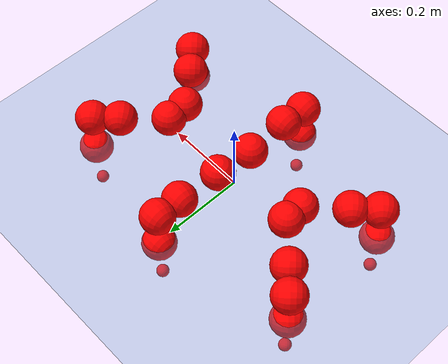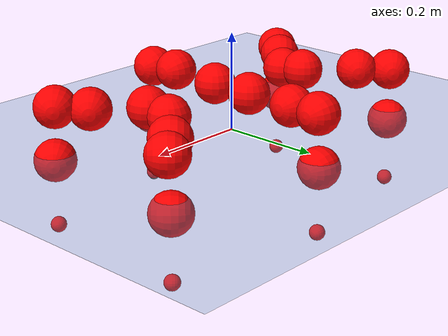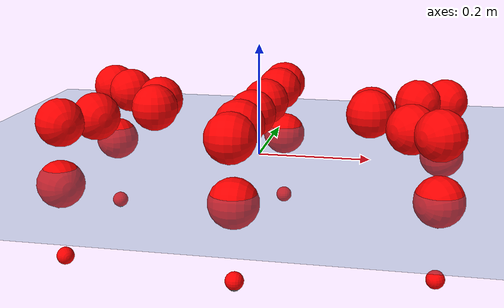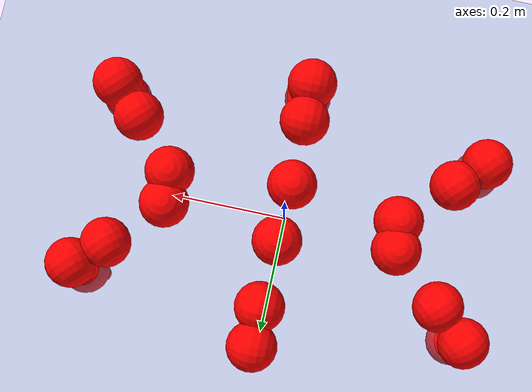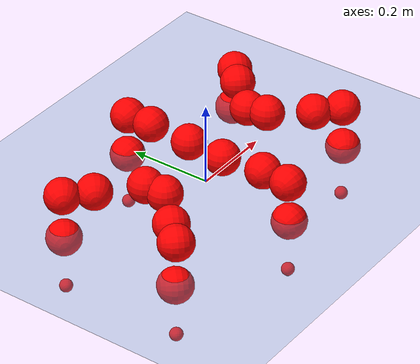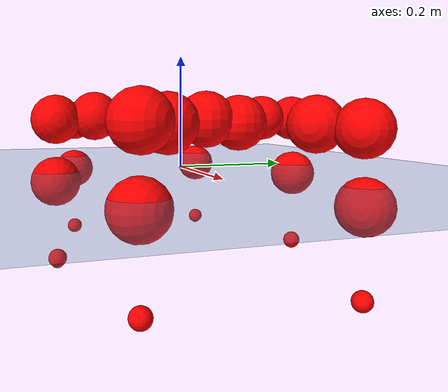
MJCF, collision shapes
<mujoco model="Golem">
  <compiler angle="radian" assetdir="assets" balanceinertia="true" inertiafromgeom="false"/>

  <option timestep="0.005" density="1.2" viscosity="2e-05"/>

  <size nkey="1"/>

  <visual>
    <quality shadowsize="8192"/>
    <map shadowclip="0.5"/>
  </visual>

  <default>
    <default class="/">
      <joint armature="0.01" damping="0.01" frictionloss="0.01"/>
      <geom contype="0" conaffinity="0" group="1" solref="-1000 -80"/>
      <site size="0.01 0.005 0.005" group="5"/>
      <general forcelimited="true" biastype="affine" gainprm="25" biasprm="0 -25 -0.5"/>
      <default class="visual">
        <geom type="mesh" group="2"/>
      </default>
      <default class="collision">
        <geom group="3"/>
      </default>
      <default class="foot">
        <geom size="0.01 0 0" condim="6" group="4" priority="1" solimp="0.015 1 0.01"/>
      </default>
      <default class="reward_collision_sphere">
        <geom group="5" rgba="1 0 0 1"/>
      </default>
    </default>
  </default>

  <asset>
    <texture type="skybox" colorspace="auto" name="//unnamed_texture_0" builtin="gradient" rgb1="0.95 0.95 0.95" rgb2="0.95 0.95 0.95" width="100" height="600"/>
    <texture type="2d" colorspace="auto" name="texplane" builtin="checker" rgb1="0.345 0.575 0.748" rgb2="0.345 0.575 0.748" markrgb="1 1 1" width="512" height="512"/>
    <material name="MatPlane" class="/" texture="texplane" texuniform="true" texrepeat="2 2" specular="0.9"/>
    <mesh name="body" class="/" file="body.stl" scale="0.001 0.001 0.001"/>
    <mesh name="coxa" class="/" file="coxa.stl" scale="0.001 0.001 0.001"/>
    <mesh name="femur" class="/" file="femur.stl" scale="0.001 0.001 0.001"/>
    <mesh name="tibia" class="/" file="tibia.stl" scale="0.001 0.001 0.001"/>
    <mesh name="tarsus" class="/" file="tarsus.stl" scale="0.001 0.001 0.001"/>
  </asset>

  <worldbody>
    <geom name="floor" class="/" size="100 100 0.125" type="plane" group="0" material="MatPlane"/>
    <light name="toplight_shadow" class="/" pos="0 0 5" dir="0.0990148 0.0990148 -0.990148" type="directional" ambient="0.04 0.04 0.04" diffuse="0.55 0.55 0.55" specular="0.12 0.12 0.12"/>
    <light name="toplight_fill" class="/" pos="0 0 5" dir="0.0990148 0.0990148 -0.990148" type="directional" castshadow="false" ambient="0.04 0.04 0.04" diffuse="0.3 0.3 0.3" specular="0.08 0.08 0.08"/>
    <body name="trunk" pos="0.00244267 -0.000354546 0.00448229" quat="1 -3.91092e-06 0.000107456 -0.000226866">
      <inertial pos="-4.77513e-05 -0.00266305 0.00252937" quat="0.999988 -0.00472333 -6.36094e-05 0.00151152" mass="4.14594" diaginertia="0.0282267 0.000977613 0.0315375"/>
      <joint name="//unnamed_joint_0" type="free"/>
      <geom name="//unnamed_geom_1" class="/" pos="0 0 0.0808696" quat="1 0 0 0" type="mesh" rgba="0.9 0.9 0.9 1" mesh="body"/>
      <site name="imu" class="/" pos="0.157944 0.0016043 0.110211" size="0.0104647"/>
      <camera name="track" class="/" pos="0 -1.26719 0" quat="0.707107 0.707107 0 0" mode="trackcom"/>
      <camera name="ego_camera" class="/" pos="0.161489 0 0.126359" quat="-0.5 -0.5 0.5 0.5"/>
      <body name="coxa_RR" pos="-0.216772 -0.0513286 0.0792131" quat="0.381504 -0.00238662 -0.00147625 -0.924363">
        <inertial pos="0.0055385 0.000791334 0.002129" quat="0.999857 0.00379503 0.01647 0.000398109" mass="0.229728" diaginertia="0.0298091 0.00103827 0.0341537"/>
        <joint name="coxa_joint_RR" class="/" pos="0 0 0" axis="0.00764918 0.00107608 -0.99997" stiffness="0.00243041" range="-3.14943 3.18833" armature="0.00957643" damping="0" frictionloss="0.00867437"/>
        <geom name="//unnamed_geom_2" class="/" type="mesh" rgba="0.2 0.2 0.2 1" mesh="coxa"/>
        <geom name="//unnamed_geom_3" class="reward_collision_sphere" size="0.0418588" pos="-0.0372668 0 0"/>
        <body name="femur_RR" pos="0.0749555 -0.00178398 -0.00226554" quat="0.499997 -0.499862 0.49996 0.500181">
          <inertial pos="-0.00209013 -0.00111398 -0.00437224" quat="0.999999 -1.77981e-05 0.000628504 0.00159118" mass="0.232506" diaginertia="0.0298496 0.00103526 0.0348551"/>
          <joint name="femur_joint_RR" class="/" pos="0 0 0" axis="-0.00975122 -0.0140202 -0.999854" range="-3.10024 3.14717" armature="0.0102887" damping="0.021993" frictionloss="0.00950854"/>
          <geom name="//unnamed_geom_4" class="/" type="mesh" rgba="0.9 0.9 0.9 1" mesh="femur"/>
          <geom name="//unnamed_geom_5" class="reward_collision_sphere" size="0.0418588"/>
          <body name="tibia_RR" pos="0.00245443 -0.066424 0.000878503" quat="1.30502e-05 1 -1.87926e-06 -6.75619e-09">
            <inertial pos="-0.000719781 -0.00358551 0.00444965" quat="0.99984 -0.00574922 -0.0162499 0.00470547" mass="0.22292" diaginertia="0.0306364 0.00102659 0.0330821"/>
            <joint name="tibia_joint_RR" class="/" pos="0 0 0" axis="-0.000947017 0.00860078 0.999963" stiffness="0.00118041" range="-3.13552 3.17442" armature="0.0101121" damping="0.010621" frictionloss="0.0116929"/>
            <geom name="//unnamed_geom_6" class="/" type="mesh" rgba="0.2 0.2 0.2 1" mesh="tibia"/>
            <geom name="//unnamed_geom_7" class="reward_collision_sphere" size="0.0418588"/>
            <body name="tarsus_RR" pos="0.109792 0.00401088 0.00309126" quat="0.999998 -0.000212687 0.0019732 0.000203954">
              <inertial pos="0.0763519 0.00534268 0.00122254" quat="0.489952 0.500706 0.504481 0.504718" mass="0.24048" diaginertia="0.0293667 0.000980229 0.03235"/>
              <joint name="tarsus_joint_RR" class="/" pos="0 0 0" axis="-0.000127347 0.000425253 1" range="-3.14945 3.09584" armature="0.0102493" damping="0.017219" frictionloss="0.00918598"/>
              <geom name="//unnamed_geom_8" class="/" type="mesh" rgba="0.9 0.9 0.9 1" mesh="tarsus"/>
              <geom name="foot_1" class="foot" size="0.00958549" pos="0.139129 0 0" quat="0 -0.707107 0 0.707107"/>
              <geom name="//unnamed_geom_10" class="reward_collision_sphere" size="0.0418588"/>
              <geom name="//unnamed_geom_11" class="reward_collision_sphere" size="0.0156971" pos="0.133539 0 0"/>
              <site name="foot_1" class="foot" pos="0.139129 0 0" quat="0 -0.707107 0 0.707107" size="0.0104647"/>
            </body>
          </body>
        </body>
      </body>
      <body name="coxa_RM" pos="-0.00538215 -0.0851714 0.0817373" quat="0.707336 0.000578912 -0.00119614 -0.706876">
        <inertial pos="-0.000312438 0.000703903 0.0062808" quat="0.999952 -0.00772939 0.00520052 -0.00291697" mass="0.235828" diaginertia="0.0311514 0.00109454 0.0335361"/>
        <joint name="coxa_joint_RM" class="/" pos="0 0 0" axis="0.00711115 -0.00351177 -0.999969" range="-3.14831 3.09119" armature="0.0102452" damping="0.0172342" frictionloss="0.0100216"/>
        <geom name="//unnamed_geom_12" class="/" type="mesh" rgba="0.2 0.2 0.2 1" mesh="coxa"/>
        <geom name="//unnamed_geom_13" class="reward_collision_sphere" size="0.0418588" pos="-0.0372668 0 0"/>
        <body name="femur_RM" pos="0.0717874 0.0016209 0.00709606" quat="0.497978 -0.499382 0.502012 0.500619">
          <inertial pos="-0.00232564 0.000773717 0.000880091" quat="0.999703 0.0191357 -0.00612012 0.0137764" mass="0.235958" diaginertia="0.0283103 0.00101709 0.0318108"/>
          <joint name="femur_joint_RM" class="/" pos="0 0 0" axis="0.00595691 0.00590622 -0.999965" range="-3.07909 3.07736" armature="0.00754941" damping="0" frictionloss="0.00979231"/>
          <geom name="//unnamed_geom_14" class="/" type="mesh" rgba="0.9 0.9 0.9 1" mesh="femur"/>
          <geom name="//unnamed_geom_15" class="reward_collision_sphere" size="0.0418588"/>
          <body name="tibia_RM" pos="0.00518737 -0.0665535 0.000198954" quat="0.000192409 1 -0.000165032 0.000169518">
            <inertial pos="-0.00157046 0.00163398 0.00408104" quat="0.999901 0.010496 0.00791132 0.00493159" mass="0.250236" diaginertia="0.0312394 0.00106449 0.0317654"/>
            <joint name="tibia_joint_RM" class="/" pos="0 0 0" axis="-0.00972984 0.0061888 0.999934" range="-3.084 3.20196" armature="0.0120369" damping="0.00452595" frictionloss="0.00962149"/>
            <geom name="//unnamed_geom_16" class="/" type="mesh" rgba="0.2 0.2 0.2 1" mesh="tibia"/>
            <geom name="//unnamed_geom_17" class="reward_collision_sphere" size="0.0418588"/>
            <body name="tarsus_RM" pos="0.105542 0.00295708 -0.00528456" quat="1 0.000365195 -0.000147375 -0.000317843">
              <inertial pos="0.0735256 0.000982161 -0.000698124" quat="0.497478 0.495276 0.498934 0.508215" mass="0.229308" diaginertia="0.0287927 0.00101946 0.0313704"/>
              <joint name="tarsus_joint_RM" class="/" pos="0 0 0" axis="0.00766352 0.00687843 0.999947" stiffness="0.0221202" range="-3.10171 3.0086" armature="0.0102616" damping="0.0310599" frictionloss="0.009195"/>
              <geom name="//unnamed_geom_18" class="/" type="mesh" rgba="0.9 0.9 0.9 1" mesh="tarsus"/>
              <geom name="foot_2" class="foot" size="0.0119158" pos="0.139129 0 0" quat="0 -0.707107 0 0.707107"/>
              <geom name="//unnamed_geom_20" class="reward_collision_sphere" size="0.0418588"/>
              <geom name="//unnamed_geom_21" class="reward_collision_sphere" size="0.0156971" pos="0.133539 0 0"/>
              <site name="foot_2" class="foot" pos="0.139129 0 0" quat="0 -0.707107 0 0.707107" size="0.0104647"/>
            </body>
          </body>
        </body>
      </body>
      <body name="coxa_RF" pos="0.224572 -0.0537851 0.0856811" quat="0.924293 0.00162202 -0.000330854 -0.38168">
        <inertial pos="-0.00420035 0.00387848 -0.00244381" quat="0.999932 0.0104846 0.00501153 -0.000813369" mass="0.220304" diaginertia="0.0280612 0.000986603 0.0325783"/>
        <joint name="coxa_joint_RF" class="/" pos="0 0 0" axis="0.0138157 0.0117444 -0.999836" range="-3.14115 3.08668" armature="0.0104442" damping="0.0110007" frictionloss="0.00983912"/>
        <geom name="//unnamed_geom_22" class="/" type="mesh" rgba="0.2 0.2 0.2 1" mesh="coxa"/>
        <geom name="//unnamed_geom_23" class="reward_collision_sphere" size="0.0418588" pos="-0.0372668 0 0"/>
        <body name="femur_RF" pos="0.0718148 -0.00667871 -0.00338805" quat="0.502628 -0.498541 0.500199 0.498621">
          <inertial pos="0.00222648 -0.00235292 -0.000780936" quat="0.999999 8.13473e-05 -0.000884114 0.00142082" mass="0.228334" diaginertia="0.0292314 0.00104256 0.0312578"/>
          <joint name="femur_joint_RF" class="/" pos="0 0 0" axis="0.00917799 -0.00187222 -0.999956" stiffness="0.0112345" range="-3.13359 3.13512" armature="0.00913114" damping="0.0150329" frictionloss="0.00992791"/>
          <geom name="//unnamed_geom_24" class="/" type="mesh" rgba="0.9 0.9 0.9 1" mesh="femur"/>
          <geom name="//unnamed_geom_25" class="reward_collision_sphere" size="0.0418588"/>
          <body name="tibia_RF" pos="-0.00452197 -0.0666725 -0.000961419" quat="0.000223633 0.999999 -0.00103422 -0.000496723">
            <inertial pos="-0.00245128 0.00258274 -0.00027942" quat="0.999988 0.00469801 -0.0014666 0.000699633" mass="0.249189" diaginertia="0.032128 0.00108281 0.0327908"/>
            <joint name="tibia_joint_RF" class="/" pos="0 0 0" axis="-0.00483514 -5.32686e-06 0.999988" stiffness="0.0240709" range="-3.10549 3.1985" armature="0.0106731" damping="0.0447453" frictionloss="0.0105234"/>
            <geom name="//unnamed_geom_26" class="/" type="mesh" rgba="0.2 0.2 0.2 1" mesh="tibia"/>
            <geom name="//unnamed_geom_27" class="reward_collision_sphere" size="0.0418588"/>
            <body name="tarsus_RF" pos="0.107337 0.0040062 -3.57438e-05" quat="1 0.000492284 0.000472808 -0.000358327">
              <inertial pos="0.0759162 0.00148555 0.00203126" quat="0.500269 0.500172 0.500853 0.498703" mass="0.226757" diaginertia="0.0305695 0.000989383 0.033346"/>
              <joint name="tarsus_joint_RF" class="/" pos="0 0 0" axis="-0.010175 0.010355 0.999895" range="-3.15167 3.09039" armature="0.0116743" damping="0" frictionloss="0.00921315"/>
              <geom name="//unnamed_geom_28" class="/" type="mesh" rgba="0.9 0.9 0.9 1" mesh="tarsus"/>
              <geom name="foot_3" class="foot" size="0.0100792" pos="0.139129 0 0" quat="0 -0.707107 0 0.707107"/>
              <geom name="//unnamed_geom_30" class="reward_collision_sphere" size="0.0418588"/>
              <geom name="//unnamed_geom_31" class="reward_collision_sphere" size="0.0156971" pos="0.133539 0 0"/>
              <site name="foot_3" class="foot" pos="0.139129 0 0" quat="0 -0.707107 0 0.707107" size="0.0104647"/>
            </body>
          </body>
        </body>
      </body>
      <body name="coxa_LR" pos="-0.22127 0.0505319 0.0837297" quat="0.382744 0.000330269 -0.000127587 0.923854">
        <inertial pos="0.000591575 -0.00156868 0.00214657" quat="0.999966 0.00034086 0.00789164 -0.00219797" mass="0.241587" diaginertia="0.0316444 0.00105667 0.0334241"/>
        <joint name="coxa_joint_LR" class="/" pos="0 0 0" axis="-0.00858554 -0.0111614 -0.999901" range="-3.13582 3.09045" armature="0.011165" damping="0.00370212" frictionloss="0.00926365"/>
        <geom name="//unnamed_geom_32" class="/" type="mesh" rgba="0.2 0.2 0.2 1" mesh="coxa"/>
        <geom name="//unnamed_geom_33" class="reward_collision_sphere" size="0.0418588" pos="-0.0372668 0 0"/>
        <body name="femur_LR" pos="0.0766029 0.00540686 -0.00184539" quat="0.500351 -0.500425 0.499681 0.499542">
          <inertial pos="-0.00182906 -0.000661743 0.00556374" quat="1 -0.000158401 0.000559039 -0.000538929" mass="0.240964" diaginertia="0.0309932 0.00107699 0.0336947"/>
          <joint name="femur_joint_LR" class="/" pos="0 0 0" axis="0.0266963 -0.0107464 0.999586" stiffness="0.00755528" range="-3.15713 3.1323" armature="0.0100707" damping="0" frictionloss="0.00922669"/>
          <geom name="//unnamed_geom_34" class="/" type="mesh" rgba="0.9 0.9 0.9 1" mesh="femur"/>
          <geom name="//unnamed_geom_35" class="reward_collision_sphere" size="0.0418588"/>
          <body name="tibia_LR" pos="0.00250473 -0.0707595 0.00145346" quat="0.000860413 1 -0.000289101 -0.000128922">
            <inertial pos="-0.00210871 -0.00358613 -0.00151251" quat="0.999932 -0.010797 -0.00350644 0.00262106" mass="0.227721" diaginertia="0.0310192 0.00101652 0.0307632"/>
            <joint name="tibia_joint_LR" class="/" pos="0 0 0" axis="0.03263 -0.00171471 -0.999466" range="-3.19564 3.27122" armature="0.00735567" damping="0.0406985" frictionloss="0.00976838"/>
            <geom name="//unnamed_geom_36" class="/" type="mesh" rgba="0.2 0.2 0.2 1" mesh="tibia"/>
            <geom name="//unnamed_geom_37" class="reward_collision_sphere" size="0.0418588"/>
            <body name="tarsus_LR" pos="0.11079 -0.000192242 -0.00144726" quat="0.999999 -0.000227441 0.000625534 -0.000869732">
              <inertial pos="0.068956 -0.00223078 0.00667601" quat="0.499083 0.499083 0.501472 0.500358" mass="0.232001" diaginertia="0.0287524 0.000979488 0.0328348"/>
              <joint name="tarsus_joint_LR" class="/" pos="0 0 0" axis="-0.000118163 -4.70271e-05 -1" range="-3.15339 3.14414" armature="0.0115429" damping="0" frictionloss="0.010632"/>
              <geom name="//unnamed_geom_38" class="/" type="mesh" rgba="0.9 0.9 0.9 1" mesh="tarsus"/>
              <geom name="foot_4" class="foot" size="0.0110039" pos="0.139129 0 0" quat="0.707107 0 -0.707107 0"/>
              <geom name="//unnamed_geom_40" class="reward_collision_sphere" size="0.0418588"/>
              <geom name="//unnamed_geom_41" class="reward_collision_sphere" size="0.0156971" pos="0.133539 0 0"/>
              <site name="foot_4" class="foot" pos="0.139129 0 0" quat="0.707107 0 -0.707107 0" size="0.0104647"/>
            </body>
          </body>
        </body>
      </body>
      <body name="coxa_LM" pos="-8.34646e-05 0.0860148 0.0827577" quat="0.707942 -0.000184161 -6.95651e-05 0.70627">
        <inertial pos="0.000758857 0.00419333 -0.00599017" quat="0.999997 0.00123792 0.00161837 0.000987819" mass="0.220813" diaginertia="0.0281671 0.000993677 0.0317748"/>
        <joint name="coxa_joint_LM" class="/" pos="0 0 0" axis="-0.00984651 0.0110136 -0.999891" range="-3.17119 3.10812" armature="0.0133713" damping="0.000758256" frictionloss="0.0105037"/>
        <geom name="//unnamed_geom_42" class="/" type="mesh" rgba="0.2 0.2 0.2 1" mesh="coxa"/>
        <geom name="//unnamed_geom_43" class="reward_collision_sphere" size="0.0418588" pos="-0.0372668 0 0"/>
        <body name="femur_LM" pos="0.0746307 -0.00486517 0.00159043" quat="0.500019 -0.500103 0.500007 0.499871">
          <inertial pos="0.00544663 -0.000624307 0.000913608" quat="0.999969 0.0038502 -0.00246502 0.00647881" mass="0.245092" diaginertia="0.0305464 0.00107671 0.0350075"/>
          <joint name="femur_joint_LM" class="/" pos="0 0 0" axis="0.00738405 -0.0209539 0.999753" range="-3.14969 3.1516" armature="0.00930014" damping="0.00687977" frictionloss="0.00916924"/>
          <geom name="//unnamed_geom_44" class="/" type="mesh" rgba="0.9 0.9 0.9 1" mesh="femur"/>
          <geom name="//unnamed_geom_45" class="reward_collision_sphere" size="0.0418588"/>
          <body name="tibia_LM" pos="0.000561061 -0.0650163 0.000773478" quat="-0.000457852 0.999999 -0.000491943 -0.000757537">
            <inertial pos="0.00260952 0.000655497 -0.00186096" quat="0.999922 -0.00593325 0.00997106 -0.00457855" mass="0.2372" diaginertia="0.0295444 0.000988755 0.0325433"/>
            <joint name="tibia_joint_LM" class="/" pos="0 0 0" axis="-0.0119915 0.0038519 -0.999921" range="-3.09374 3.06362" armature="0.0120342" damping="0.00738738" frictionloss="0.0108916"/>
            <geom name="//unnamed_geom_46" class="/" type="mesh" rgba="0.2 0.2 0.2 1" mesh="tibia"/>
            <geom name="//unnamed_geom_47" class="reward_collision_sphere" size="0.0418588"/>
            <body name="tarsus_LM" pos="0.107687 0.00397421 -0.000610353" quat="1 -0.000165765 -0.000123735 0.000151741">
              <inertial pos="0.0696855 -0.00147486 -0.0016347" quat="0.500594 0.499791 0.500477 0.499136" mass="0.230794" diaginertia="0.0289222 0.00100191 0.0308161"/>
              <joint name="tarsus_joint_LM" class="/" pos="0 0 0" axis="9.24988e-05 -9.31585e-05 -1" stiffness="0.0171824" range="-3.1724 3.11739" armature="0.0105904" damping="0.0308133" frictionloss="0.00935757"/>
              <geom name="//unnamed_geom_48" class="/" type="mesh" rgba="0.9 0.9 0.9 1" mesh="tarsus"/>
              <geom name="foot_5" class="foot" size="0.0103031" pos="0.139129 0 0" quat="0.707107 0 -0.707107 0"/>
              <geom name="//unnamed_geom_50" class="reward_collision_sphere" size="0.0418588"/>
              <geom name="//unnamed_geom_51" class="reward_collision_sphere" size="0.0156971" pos="0.133539 0 0"/>
              <site name="foot_5" class="foot" pos="0.139129 0 0" quat="0.707107 0 -0.707107 0" size="0.0104647"/>
            </body>
          </body>
        </body>
      </body>
      <body name="coxa_LF" pos="0.222692 0.0520137 0.0801805" quat="0.924149 -0.000297105 -0.00128402 0.382031">
        <inertial pos="-0.00219676 -0.00163879 0.00177109" quat="0.999737 -0.0194933 -0.00699239 0.00986613" mass="0.231655" diaginertia="0.027098 0.00104544 0.0322095"/>
        <joint name="coxa_joint_LF" class="/" pos="0 0 0" axis="0.00727703 -0.000324496 -0.999973" range="-3.09121 3.21404" armature="0.0104305" damping="0.00555501" frictionloss="0.0094871"/>
        <geom name="//unnamed_geom_52" class="/" type="mesh" rgba="0.2 0.2 0.2 1" mesh="coxa"/>
        <geom name="//unnamed_geom_53" class="reward_collision_sphere" size="0.0418588" pos="-0.0372668 0 0"/>
        <body name="femur_LF" pos="0.0782442 0.00349161 -0.00108933" quat="0.499878 -0.499619 0.500035 0.500467">
          <inertial pos="0.00295532 -0.00179056 -0.00035688" quat="0.999984 0.00149276 0.000179828 -0.0053728" mass="0.223087" diaginertia="0.0305635 0.0010404 0.0323541"/>
          <joint name="femur_joint_LF" class="/" pos="0 0 0" axis="-0.015837 0.0151844 0.999759" stiffness="0.0124422" range="-3.05978 3.1717" armature="0.0107281" damping="0.0176799" frictionloss="0.0103868"/>
          <geom name="//unnamed_geom_54" class="/" type="mesh" rgba="0.9 0.9 0.9 1" mesh="femur"/>
          <geom name="//unnamed_geom_55" class="reward_collision_sphere" size="0.0418588"/>
          <body name="tibia_LF" pos="0.0053874 -0.0667987 -0.00411914" quat="0.000311582 1 9.75712e-05 -0.000801652">
            <inertial pos="0.0027757 -0.00060011 -0.00211178" quat="0.999477 -0.0301796 0.00788462 -0.00851479" mass="0.215301" diaginertia="0.0301473 0.00105402 0.0316584"/>
            <joint name="tibia_joint_LF" class="/" pos="0 0 0" axis="-0.00949467 -0.00666649 -0.999933" stiffness="0.0213209" range="-3.13921 3.15394" armature="0.0109258" damping="0.0263523" frictionloss="0.00918709"/>
            <geom name="//unnamed_geom_56" class="/" type="mesh" rgba="0.2 0.2 0.2 1" mesh="tibia"/>
            <geom name="//unnamed_geom_57" class="reward_collision_sphere" size="0.0418588"/>
            <body name="tarsus_LF" pos="0.108333 0.00281112 -0.0042994" quat="0.999999 0.000669891 -0.000634769 -0.000448661">
              <inertial pos="0.0749716 -0.00258558 0.000711182" quat="0.492097 0.497545 0.507194 0.503035" mass="0.254811" diaginertia="0.0313783 0.00108173 0.0335935"/>
              <joint name="tarsus_joint_LF" class="/" pos="0 0 0" axis="0.00728713 -0.00113179 -0.999973" stiffness="0.00871863" range="-3.18263 3.14232" armature="0.0102505" damping="0" frictionloss="0.0109441"/>
              <geom name="//unnamed_geom_58" class="/" type="mesh" rgba="0.9 0.9 0.9 1" mesh="tarsus"/>
              <geom name="foot_6" class="foot" size="0.00990979" pos="0.139129 0 0" quat="0.707107 0 -0.707107 0"/>
              <geom name="//unnamed_geom_60" class="reward_collision_sphere" size="0.0418588"/>
              <geom name="//unnamed_geom_61" class="reward_collision_sphere" size="0.0156971" pos="0.133539 0 0"/>
              <site name="foot_6" class="foot" pos="0.139129 0 0" quat="0.707107 0 -0.707107 0" size="0.0104647"/>
            </body>
          </body>
        </body>
      </body>
    </body>
  </worldbody>

  <contact>
    <pair class="/" geom1="floor" geom2="foot_1" name="//unnamed_contact_0"/>
    <pair class="/" geom1="floor" geom2="foot_2" name="//unnamed_contact_1"/>
    <pair class="/" geom1="floor" geom2="foot_3" name="//unnamed_contact_2"/>
    <pair class="/" geom1="floor" geom2="foot_4" name="//unnamed_contact_3"/>
    <pair class="/" geom1="floor" geom2="foot_5" name="//unnamed_contact_4"/>
    <pair class="/" geom1="floor" geom2="foot_6" name="//unnamed_contact_5"/>
  </contact>

  <actuator>
    <general name="coxa_joint_RR" class="/" joint="coxa_joint_RR" forcerange="-7.13678 7.13678" gainprm="25.5662" biasprm="0 -25.5662 -0.478612"/>
    <general name="femur_joint_RR" class="/" joint="femur_joint_RR" forcerange="-7.39547 7.39547" gainprm="25.5662" biasprm="0 -25.5662 -0.478612"/>
    <general name="tibia_joint_RR" class="/" joint="tibia_joint_RR" forcerange="-8.63409 8.63409" gainprm="25.5662" biasprm="0 -25.5662 -0.478612"/>
    <general name="tarsus_joint_RR" class="/" joint="tarsus_joint_RR" forcerange="-7.99239 7.99239" gainprm="25.5662" biasprm="0 -25.5662 -0.478612"/>
    <general name="coxa_joint_RM" class="/" joint="coxa_joint_RM" forcerange="-5.75458 5.75458" gainprm="25.5662" biasprm="0 -25.5662 -0.478612"/>
    <general name="femur_joint_RM" class="/" joint="femur_joint_RM" forcerange="-7.2056 7.2056" gainprm="25.5662" biasprm="0 -25.5662 -0.478612"/>
    <general name="tibia_joint_RM" class="/" joint="tibia_joint_RM" forcerange="-7.94732 7.94732" gainprm="25.5662" biasprm="0 -25.5662 -0.478612"/>
    <general name="tarsus_joint_RM" class="/" joint="tarsus_joint_RM" forcerange="-8.65138 8.65138" gainprm="25.5662" biasprm="0 -25.5662 -0.478612"/>
    <general name="coxa_joint_RF" class="/" joint="coxa_joint_RF" forcerange="-6.82513 6.82513" gainprm="25.5662" biasprm="0 -25.5662 -0.478612"/>
    <general name="femur_joint_RF" class="/" joint="femur_joint_RF" forcerange="-7.72536 7.72536" gainprm="25.5662" biasprm="0 -25.5662 -0.478612"/>
    <general name="tibia_joint_RF" class="/" joint="tibia_joint_RF" forcerange="-7.51025 7.51025" gainprm="25.5662" biasprm="0 -25.5662 -0.478612"/>
    <general name="tarsus_joint_RF" class="/" joint="tarsus_joint_RF" forcerange="-7.55243 7.55243" gainprm="25.5662" biasprm="0 -25.5662 -0.478612"/>
    <general name="coxa_joint_LR" class="/" joint="coxa_joint_LR" forcerange="-6.36466 6.36466" gainprm="25.5662" biasprm="0 -25.5662 -0.478612"/>
    <general name="femur_joint_LR" class="/" joint="femur_joint_LR" forcerange="-7.6226 7.6226" gainprm="25.5662" biasprm="0 -25.5662 -0.478612"/>
    <general name="tibia_joint_LR" class="/" joint="tibia_joint_LR" forcerange="-7.07858 7.07858" gainprm="25.5662" biasprm="0 -25.5662 -0.478612"/>
    <general name="tarsus_joint_LR" class="/" joint="tarsus_joint_LR" forcerange="-6.18943 6.18943" gainprm="25.5662" biasprm="0 -25.5662 -0.478612"/>
    <general name="coxa_joint_LM" class="/" joint="coxa_joint_LM" forcerange="-8.56972 8.56972" gainprm="25.5662" biasprm="0 -25.5662 -0.478612"/>
    <general name="femur_joint_LM" class="/" joint="femur_joint_LM" forcerange="-8.16812 8.16812" gainprm="25.5662" biasprm="0 -25.5662 -0.478612"/>
    <general name="tibia_joint_LM" class="/" joint="tibia_joint_LM" forcerange="-6.47147 6.47147" gainprm="25.5662" biasprm="0 -25.5662 -0.478612"/>
    <general name="tarsus_joint_LM" class="/" joint="tarsus_joint_LM" forcerange="-5.85208 5.85208" gainprm="25.5662" biasprm="0 -25.5662 -0.478612"/>
    <general name="coxa_joint_LF" class="/" joint="coxa_joint_LF" forcerange="-8.14269 8.14269" gainprm="25.5662" biasprm="0 -25.5662 -0.478612"/>
    <general name="femur_joint_LF" class="/" joint="femur_joint_LF" forcerange="-8.07234 8.07234" gainprm="25.5662" biasprm="0 -25.5662 -0.478612"/>
    <general name="tibia_joint_LF" class="/" joint="tibia_joint_LF" forcerange="-7.13772 7.13772" gainprm="25.5662" biasprm="0 -25.5662 -0.478612"/>
    <general name="tarsus_joint_LF" class="/" joint="tarsus_joint_LF" forcerange="-7.48099 7.48099" gainprm="25.5662" biasprm="0 -25.5662 -0.478612"/>
  </actuator>

  <sensor>
    <gyro site="imu" name="imu_angular_velocity"/>
    <velocimeter site="imu" name="imu_linear_velocity"/>
    <framelinvel objtype="site" objname="foot_1" name="foot_1_global_linear_velocity"/>
    <framelinvel objtype="site" objname="foot_2" name="foot_2_global_linear_velocity"/>
    <framelinvel objtype="site" objname="foot_3" name="foot_3_global_linear_velocity"/>
    <framelinvel objtype="site" objname="foot_4" name="foot_4_global_linear_velocity"/>
    <framelinvel objtype="site" objname="foot_5" name="foot_5_global_linear_velocity"/>
    <framelinvel objtype="site" objname="foot_6" name="foot_6_global_linear_velocity"/>
  </sensor>

  <keyframe>
    <key name="home" qpos="0 0 0.1457 1 0 0 0 0 0 0 0 0 0 0 0 0 0 0 0 0 0 0 0 0 0 0 0 0 0 0 0"/>
  </keyframe>
</mujoco>
